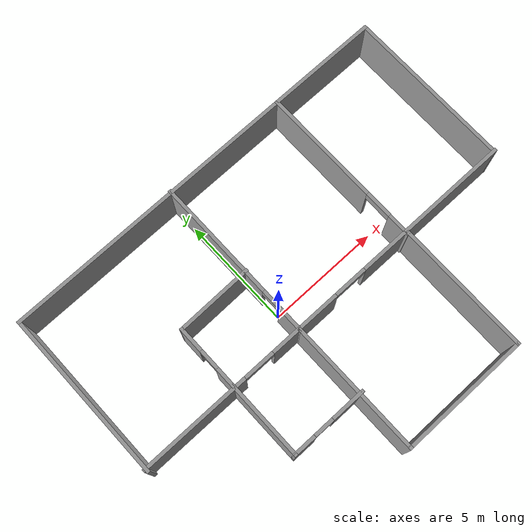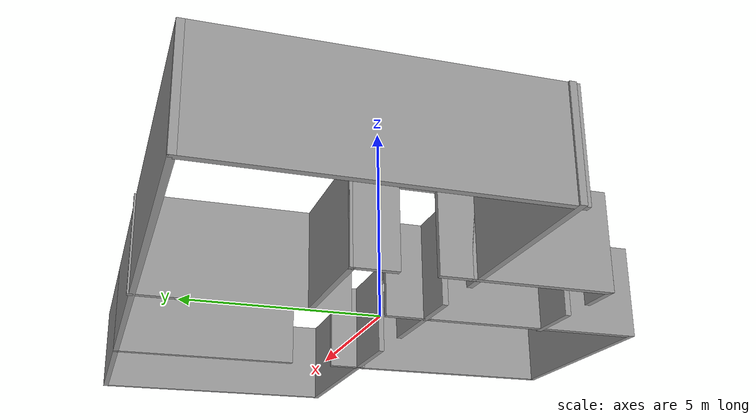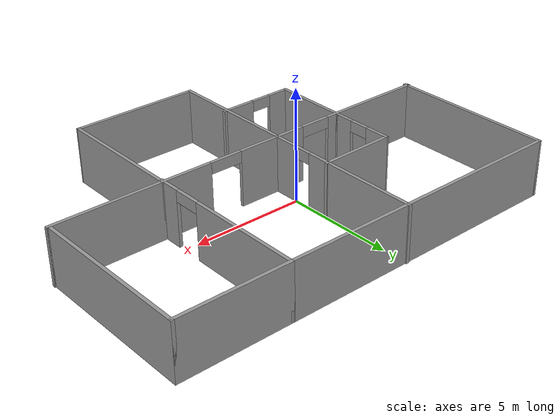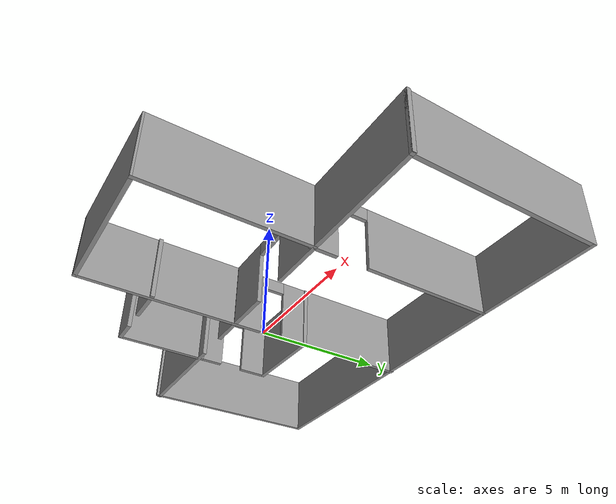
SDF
<?xml version='1.0'?>
<sdf version='1.6'>
  <model name='Floorplan'>
    <pose frame=''>1.40637 -0.495074 0 0 -0 0</pose>
    <link name='Wall_0'>
      <collision name='Wall_0_Collision'>
        <geometry>
          <box>
            <size>13.25 0.15 2.5</size>
          </box>
        </geometry>
        <pose frame=''>0 0 1.25 0 -0 0</pose>
      </collision>
      <visual name='Wall_0_Visual'>
        <pose frame=''>0 0 1.25 0 -0 0</pose>
        <geometry>
          <box>
            <size>13.25 0.15 2.5</size>
          </box>
        </geometry>
        <material>
          <script>
            <uri>file://media/materials/scripts/gazebo.material</uri>
            <name>Gazebo/Grey</name>
          </script>
          <ambient>1 1 1 1</ambient>
        </material>
        <meta>
          <layer>0</layer>
        </meta>
      </visual>
      <pose frame=''>-2.42637 6.55507 0 0 -0 0</pose>
    </link>
    <link name='Wall_14'>
      <pose frame=''>-5.225 -0.693246 0 0 -0 3.14159</pose>
      <visual name='Wall_14_Visual_0'>
        <pose frame=''>-3.17008 0 1.25 0 -0 0</pose>
        <geometry>
          <box>
            <size>1.40985 0.15 2.5</size>
          </box>
        </geometry>
        <material>
          <script>
            <uri>file://media/materials/scripts/gazebo.material</uri>
            <name>Gazebo/Grey</name>
          </script>
          <ambient>1 1 1 1</ambient>
        </material>
        <meta>
          <layer>0</layer>
        </meta>
      </visual>
      <collision name='Wall_14_Collision_0'>
        <geometry>
          <box>
            <size>1.40985 0.15 2.5</size>
          </box>
        </geometry>
        <pose frame=''>-3.17008 0 1.25 0 -0 0</pose>
      </collision>
      <visual name='Wall_14_Visual_1'>
        <pose frame=''>1.40067 0 1.25 0 -0 0</pose>
        <geometry>
          <box>
            <size>4.94866 0.15 2.5</size>
          </box>
        </geometry>
        <material>
          <script>
            <uri>file://media/materials/scripts/gazebo.material</uri>
            <name>Gazebo/Grey</name>
          </script>
          <ambient>1 1 1 1</ambient>
        </material>
        <meta>
          <layer>0</layer>
        </meta>
      </visual>
      <collision name='Wall_14_Collision_1'>
        <geometry>
          <box>
            <size>4.94866 0.15 2.5</size>
          </box>
        </geometry>
        <pose frame=''>1.40067 0 1.25 0 -0 0</pose>
      </collision>
      <visual name='Wall_14_Visual_2'>
        <pose frame=''>-1.76941 0 2.25 0 -0 0</pose>
        <geometry>
          <box>
            <size>1.39149 0.15 0.5</size>
          </box>
        </geometry>
        <material>
          <script>
            <uri>file://media/materials/scripts/gazebo.material</uri>
            <name>Gazebo/Grey</name>
          </script>
          <ambient>1 1 1 1</ambient>
        </material>
        <meta>
          <layer>0</layer>
        </meta>
      </visual>
      <collision name='Wall_14_Collision_2'>
        <geometry>
          <box>
            <size>1.39149 0.15 0.5</size>
          </box>
        </geometry>
        <pose frame=''>-1.76941 0 2.25 0 -0 0</pose>
      </collision>
    </link>
    <link name='Wall_16'>
      <pose frame=''>-1.44249 2.92511 0 0 -0 -1.5708</pose>
      <visual name='Wall_16_Visual_0'>
        <pose frame=''>-1.04655 0 1.25 0 -0 0</pose>
        <geometry>
          <box>
            <size>5.40691 0.15 2.5</size>
          </box>
        </geometry>
        <material>
          <script>
            <uri>file://media/materials/scripts/gazebo.material</uri>
            <name>Gazebo/Grey</name>
          </script>
          <ambient>1 1 1 1</ambient>
        </material>
        <meta>
          <layer>0</layer>
        </meta>
      </visual>
      <collision name='Wall_16_Collision_0'>
        <geometry>
          <box>
            <size>5.40691 0.15 2.5</size>
          </box>
        </geometry>
        <pose frame=''>-1.04655 0 1.25 0 -0 0</pose>
      </collision>
      <visual name='Wall_16_Visual_1'>
        <pose frame=''>3.15346 0 1.25 0 -0 0</pose>
        <geometry>
          <box>
            <size>1.19309 0.15 2.5</size>
          </box>
        </geometry>
        <material>
          <script>
            <uri>file://media/materials/scripts/gazebo.material</uri>
            <name>Gazebo/Grey</name>
          </script>
          <ambient>1 1 1 1</ambient>
        </material>
        <meta>
          <layer>0</layer>
        </meta>
      </visual>
      <collision name='Wall_16_Collision_1'>
        <geometry>
          <box>
            <size>1.19309 0.15 2.5</size>
          </box>
        </geometry>
        <pose frame=''>3.15346 0 1.25 0 -0 0</pose>
      </collision>
      <visual name='Wall_16_Visual_2'>
        <pose frame=''>2.10691 0 2.25 0 -0 0</pose>
        <geometry>
          <box>
            <size>0.9 0.15 0.5</size>
          </box>
        </geometry>
        <material>
          <script>
            <uri>file://media/materials/scripts/gazebo.material</uri>
            <name>Gazebo/Grey</name>
          </script>
          <ambient>1 1 1 1</ambient>
        </material>
        <meta>
          <layer>0</layer>
        </meta>
      </visual>
      <collision name='Wall_16_Collision_2'>
        <geometry>
          <box>
            <size>0.9 0.15 0.5</size>
          </box>
        </geometry>
        <pose frame=''>2.10691 0 2.25 0 -0 0</pose>
      </collision>
    </link>
    <link name='Wall_18'>
      <collision name='Wall_18_Collision'>
        <geometry>
          <box>
            <size>6 0.15 2.5</size>
          </box>
        </geometry>
        <pose frame=''>0 0 1.25 0 -0 0</pose>
      </collision>
      <visual name='Wall_18_Visual'>
        <pose frame=''>0 0 1.25 0 -0 0</pose>
        <geometry>
          <box>
            <size>6 0.15 2.5</size>
          </box>
        </geometry>
        <material>
          <script>
            <uri>file://media/materials/scripts/gazebo.material</uri>
            <name>Gazebo/Grey</name>
          </script>
          <ambient>1 1 1 1</ambient>
        </material>
        <meta>
          <layer>0</layer>
        </meta>
      </visual>
      <pose frame=''>-1.44249 -3.67489 0 0 -0 -1.5708</pose>
    </link>
    <link name='Wall_19'>
      <collision name='Wall_19_Collision'>
        <geometry>
          <box>
            <size>5.75 0.15 2.5</size>
          </box>
        </geometry>
        <pose frame=''>0 0 1.25 0 -0 0</pose>
      </collision>
      <visual name='Wall_19_Visual'>
        <pose frame=''>0 0 1.25 0 -0 0</pose>
        <geometry>
          <box>
            <size>5.75 0.15 2.5</size>
          </box>
        </geometry>
        <material>
          <script>
            <uri>file://media/materials/scripts/gazebo.material</uri>
            <name>Gazebo/Grey</name>
          </script>
          <ambient>1 1 1 1</ambient>
        </material>
        <meta>
          <layer>0</layer>
        </meta>
      </visual>
      <pose frame=''>1.35751 -6.59989 0 0 -0 0</pose>
    </link>
    <link name='Wall_20'>
      <collision name='Wall_20_Collision'>
        <geometry>
          <box>
            <size>6.05667 0.15 2.5</size>
          </box>
        </geometry>
        <pose frame=''>0 0 1.25 0 -0 0</pose>
      </collision>
      <visual name='Wall_20_Visual'>
        <pose frame=''>0 0 1.25 0 -0 0</pose>
        <geometry>
          <box>
            <size>6.05667 0.15 2.5</size>
          </box>
        </geometry>
        <material>
          <script>
            <uri>file://media/materials/scripts/gazebo.material</uri>
            <name>Gazebo/Grey</name>
          </script>
          <ambient>1 1 1 1</ambient>
        </material>
        <meta>
          <layer>0</layer>
        </meta>
      </visual>
      <pose frame=''>4.16625 -3.64657 0 0 -0 1.56784</pose>
    </link>
    <link name='Wall_22'>
      <collision name='Wall_22_Collision'>
        <geometry>
          <box>
            <size>3.5 0.15 2.5</size>
          </box>
        </geometry>
        <pose frame=''>0 0 1.25 0 -0 0</pose>
      </collision>
      <visual name='Wall_22_Visual'>
        <pose frame=''>0 0 1.25 0 -0 0</pose>
        <geometry>
          <box>
            <size>3.5 0.15 2.5</size>
          </box>
        </geometry>
        <material>
          <script>
            <uri>file://media/materials/scripts/gazebo.material</uri>
            <name>Gazebo/Grey</name>
          </script>
          <ambient>1 1 1 1</ambient>
        </material>
        <meta>
          <layer>0</layer>
        </meta>
      </visual>
      <pose frame=''>-4.67815 -2.28079 0 0 -0 -1.5708</pose>
    </link>
    <link name='Wall_23'>
      <pose frame=''>-3.00315 -3.9558 0 0 -0 0</pose>
      <visual name='Wall_23_Visual_0'>
        <pose frame=''>-1.22494 0 1.25 0 -0 0</pose>
        <geometry>
          <box>
            <size>1.05013 0.15 2.5</size>
          </box>
        </geometry>
        <material>
          <script>
            <uri>file://media/materials/scripts/gazebo.material</uri>
            <name>Gazebo/Grey</name>
          </script>
          <ambient>1 1 1 1</ambient>
        </material>
        <meta>
          <layer>0</layer>
        </meta>
      </visual>
      <collision name='Wall_23_Collision_0'>
        <geometry>
          <box>
            <size>1.05013 0.15 2.5</size>
          </box>
        </geometry>
        <pose frame=''>-1.22494 0 1.25 0 -0 0</pose>
      </collision>
      <visual name='Wall_23_Visual_1'>
        <pose frame=''>0.975064 0 1.25 0 -0 0</pose>
        <geometry>
          <box>
            <size>1.54987 0.15 2.5</size>
          </box>
        </geometry>
        <material>
          <script>
            <uri>file://media/materials/scripts/gazebo.material</uri>
            <name>Gazebo/Grey</name>
          </script>
          <ambient>1 1 1 1</ambient>
        </material>
        <meta>
          <layer>0</layer>
        </meta>
      </visual>
      <collision name='Wall_23_Collision_1'>
        <geometry>
          <box>
            <size>1.54987 0.15 2.5</size>
          </box>
        </geometry>
        <pose frame=''>0.975064 0 1.25 0 -0 0</pose>
      </collision>
      <visual name='Wall_23_Visual_2'>
        <pose frame=''>-0.249871 0 2.25 0 -0 0</pose>
        <geometry>
          <box>
            <size>0.9 0.15 0.5</size>
          </box>
        </geometry>
        <material>
          <script>
            <uri>file://media/materials/scripts/gazebo.material</uri>
            <name>Gazebo/Grey</name>
          </script>
          <ambient>1 1 1 1</ambient>
        </material>
        <meta>
          <layer>0</layer>
        </meta>
      </visual>
      <collision name='Wall_23_Collision_2'>
        <geometry>
          <box>
            <size>0.9 0.15 0.5</size>
          </box>
        </geometry>
        <pose frame=''>-0.249871 0 2.25 0 -0 0</pose>
      </collision>
    </link>
    <link name='Wall_25'>
      <pose frame=''>-4.67815 0.819205 0 0 -0 1.5708</pose>
      <visual name='Wall_25_Visual_0'>
        <pose frame=''>-1.02843 0 1.25 0 -0 0</pose>
        <geometry>
          <box>
            <size>0.943137 0.15 2.5</size>
          </box>
        </geometry>
        <material>
          <script>
            <uri>file://media/materials/scripts/gazebo.material</uri>
            <name>Gazebo/Grey</name>
          </script>
          <ambient>1 1 1 1</ambient>
        </material>
        <meta>
          <layer>0</layer>
        </meta>
      </visual>
      <collision name='Wall_25_Collision_0'>
        <geometry>
          <box>
            <size>0.943137 0.15 2.5</size>
          </box>
        </geometry>
        <pose frame=''>-1.02843 0 1.25 0 -0 0</pose>
      </collision>
      <visual name='Wall_25_Visual_1'>
        <pose frame=''>0.921568 0 1.25 0 -0 0</pose>
        <geometry>
          <box>
            <size>1.15686 0.15 2.5</size>
          </box>
        </geometry>
        <material>
          <script>
            <uri>file://media/materials/scripts/gazebo.material</uri>
            <name>Gazebo/Grey</name>
          </script>
          <ambient>1 1 1 1</ambient>
        </material>
        <meta>
          <layer>0</layer>
        </meta>
      </visual>
      <collision name='Wall_25_Collision_1'>
        <geometry>
          <box>
            <size>1.15686 0.15 2.5</size>
          </box>
        </geometry>
        <pose frame=''>0.921568 0 1.25 0 -0 0</pose>
      </collision>
      <visual name='Wall_25_Visual_2'>
        <pose frame=''>-0.106863 0 2.25 0 -0 0</pose>
        <geometry>
          <box>
            <size>0.9 0.15 0.5</size>
          </box>
        </geometry>
        <material>
          <script>
            <uri>file://media/materials/scripts/gazebo.material</uri>
            <name>Gazebo/Grey</name>
          </script>
          <ambient>1 1 1 1</ambient>
        </material>
        <meta>
          <layer>0</layer>
        </meta>
      </visual>
      <collision name='Wall_25_Collision_2'>
        <geometry>
          <box>
            <size>0.9 0.15 0.5</size>
          </box>
        </geometry>
        <pose frame=''>-0.106863 0 2.25 0 -0 0</pose>
      </collision>
    </link>
    <link name='Wall_29'>
      <collision name='Wall_29_Collision'>
        <geometry>
          <box>
            <size>3.42108 0.15 2.5</size>
          </box>
        </geometry>
        <pose frame=''>0 0 1.25 0 -0 0</pose>
      </collision>
      <visual name='Wall_29_Visual'>
        <pose frame=''>0 0 1.25 0 -0 0</pose>
        <geometry>
          <box>
            <size>3.42108 0.15 2.5</size>
          </box>
        </geometry>
        <material>
          <script>
            <uri>file://media/materials/scripts/gazebo.material</uri>
            <name>Gazebo/Grey</name>
          </script>
          <ambient>1 1 1 1</ambient>
        </material>
        <meta>
          <layer>0</layer>
        </meta>
      </visual>
      <pose frame=''>-3.04283 2.27088 0 0 -0 -3.12528</pose>
    </link>
    <link name='Wall_3'>
      <pose frame=''>4.12364 2.88007 0 0 -0 -1.5708</pose>
      <visual name='Wall_3_Visual_0'>
        <pose frame=''>-1.12925 0 1.25 0 -0 0</pose>
        <geometry>
          <box>
            <size>5.2415 0.15 2.5</size>
          </box>
        </geometry>
        <material>
          <script>
            <uri>file://media/materials/scripts/gazebo.material</uri>
            <name>Gazebo/Grey</name>
          </script>
          <ambient>1 1 1 1</ambient>
        </material>
        <meta>
          <layer>0</layer>
        </meta>
      </visual>
      <collision name='Wall_3_Collision_0'>
        <geometry>
          <box>
            <size>5.2415 0.15 2.5</size>
          </box>
        </geometry>
        <pose frame=''>-1.12925 0 1.25 0 -0 0</pose>
      </collision>
      <visual name='Wall_3_Visual_1'>
        <pose frame=''>3.22253 0 1.25 0 -0 0</pose>
        <geometry>
          <box>
            <size>1.05495 0.15 2.5</size>
          </box>
        </geometry>
        <material>
          <script>
            <uri>file://media/materials/scripts/gazebo.material</uri>
            <name>Gazebo/Grey</name>
          </script>
          <ambient>1 1 1 1</ambient>
        </material>
        <meta>
          <layer>0</layer>
        </meta>
      </visual>
      <collision name='Wall_3_Collision_1'>
        <geometry>
          <box>
            <size>1.05495 0.15 2.5</size>
          </box>
        </geometry>
        <pose frame=''>3.22253 0 1.25 0 -0 0</pose>
      </collision>
      <visual name='Wall_3_Visual_2'>
        <pose frame=''>2.09328 0 2.25 0 -0 0</pose>
        <geometry>
          <box>
            <size>1.20355 0.15 0.5</size>
          </box>
        </geometry>
        <material>
          <script>
            <uri>file://media/materials/scripts/gazebo.material</uri>
            <name>Gazebo/Grey</name>
          </script>
          <ambient>1 1 1 1</ambient>
        </material>
        <meta>
          <layer>0</layer>
        </meta>
      </visual>
      <collision name='Wall_3_Collision_2'>
        <geometry>
          <box>
            <size>1.20355 0.15 0.5</size>
          </box>
        </geometry>
        <pose frame=''>2.09328 0 2.25 0 -0 0</pose>
      </collision>
    </link>
    <link name='Wall_31'>
      <collision name='Wall_31_Collision'>
        <geometry>
          <box>
            <size>5 0.15 2.5</size>
          </box>
        </geometry>
        <pose frame=''>0 0 1.25 0 -0 0</pose>
      </collision>
      <visual name='Wall_31_Visual'>
        <pose frame=''>0 0 1.25 0 -0 0</pose>
        <geometry>
          <box>
            <size>5 0.15 2.5</size>
          </box>
        </geometry>
        <material>
          <script>
            <uri>file://media/materials/scripts/gazebo.material</uri>
            <name>Gazebo/Grey</name>
          </script>
          <ambient>1 1 1 1</ambient>
        </material>
        <meta>
          <layer>0</layer>
        </meta>
      </visual>
      <pose frame=''>6.54863 6.55507 0 0 -0 0</pose>
    </link>
    <link name='Wall_32'>
      <collision name='Wall_32_Collision'>
        <geometry>
          <box>
            <size>7.25 0.15 2.5</size>
          </box>
        </geometry>
        <pose frame=''>0 0 1.25 0 -0 0</pose>
      </collision>
      <visual name='Wall_32_Visual'>
        <pose frame=''>0 0 1.25 0 -0 0</pose>
        <geometry>
          <box>
            <size>7.25 0.15 2.5</size>
          </box>
        </geometry>
        <material>
          <script>
            <uri>file://media/materials/scripts/gazebo.material</uri>
            <name>Gazebo/Grey</name>
          </script>
          <ambient>1 1 1 1</ambient>
        </material>
        <meta>
          <layer>0</layer>
        </meta>
      </visual>
      <pose frame=''>8.97363 3.00507 0 0 -0 -1.5708</pose>
    </link>
    <link name='Wall_34'>
      <collision name='Wall_34_Collision'>
        <geometry>
          <box>
            <size>5 0.15 2.5</size>
          </box>
        </geometry>
        <pose frame=''>0 0 1.25 0 -0 0</pose>
      </collision>
      <visual name='Wall_34_Visual'>
        <pose frame=''>0 0 1.25 0 -0 0</pose>
        <geometry>
          <box>
            <size>5 0.15 2.5</size>
          </box>
        </geometry>
        <material>
          <script>
            <uri>file://media/materials/scripts/gazebo.material</uri>
            <name>Gazebo/Grey</name>
          </script>
          <ambient>1 1 1 1</ambient>
        </material>
        <meta>
          <layer>0</layer>
        </meta>
      </visual>
      <pose frame=''>6.6 -0.693246 0 0 -0 0</pose>
    </link>
    <link name='Wall_35'>
      <collision name='Wall_35_Collision'>
        <geometry>
          <box>
            <size>0.15 0.15 2.5</size>
          </box>
        </geometry>
        <pose frame=''>0 0 1.25 0 -0 0</pose>
      </collision>
      <visual name='Wall_35_Visual'>
        <pose frame=''>0 0 1.25 0 -0 0</pose>
        <geometry>
          <box>
            <size>0.15 0.15 2.5</size>
          </box>
        </geometry>
        <material>
          <script>
            <uri>file://media/materials/scripts/gazebo.material</uri>
            <name>Gazebo/Grey</name>
          </script>
          <ambient>1 1 1 1</ambient>
        </material>
        <meta>
          <layer>0</layer>
        </meta>
      </visual>
      <pose frame=''>9.025 -0.693246 0 0 -0 0</pose>
    </link>
    <link name='Wall_6'>
      <pose frame=''>1.375 -0.693246 0 0 -0 0</pose>
      <visual name='Wall_6_Visual_0'>
        <pose frame=''>-1.88941 0 1.25 0 -0 0</pose>
        <geometry>
          <box>
            <size>1.97119 0.15 2.5</size>
          </box>
        </geometry>
        <material>
          <script>
            <uri>file://media/materials/scripts/gazebo.material</uri>
            <name>Gazebo/Grey</name>
          </script>
          <ambient>1 1 1 1</ambient>
        </material>
        <meta>
          <layer>0</layer>
        </meta>
      </visual>
      <collision name='Wall_6_Collision_0'>
        <geometry>
          <box>
            <size>1.97119 0.15 2.5</size>
          </box>
        </geometry>
        <pose frame=''>-1.88941 0 1.25 0 -0 0</pose>
      </collision>
      <visual name='Wall_6_Visual_1'>
        <pose frame=''>1.71948 0 1.25 0 -0 0</pose>
        <geometry>
          <box>
            <size>2.31103 0.15 2.5</size>
          </box>
        </geometry>
        <material>
          <script>
            <uri>file://media/materials/scripts/gazebo.material</uri>
            <name>Gazebo/Grey</name>
          </script>
          <ambient>1 1 1 1</ambient>
        </material>
        <meta>
          <layer>0</layer>
        </meta>
      </visual>
      <collision name='Wall_6_Collision_1'>
        <geometry>
          <box>
            <size>2.31103 0.15 2.5</size>
          </box>
        </geometry>
        <pose frame=''>1.71948 0 1.25 0 -0 0</pose>
      </collision>
      <visual name='Wall_6_Visual_2'>
        <pose frame=''>-0.169923 0 2.25 0 -0 0</pose>
        <geometry>
          <box>
            <size>1.46778 0.15 0.5</size>
          </box>
        </geometry>
        <material>
          <script>
            <uri>file://media/materials/scripts/gazebo.material</uri>
            <name>Gazebo/Grey</name>
          </script>
          <ambient>1 1 1 1</ambient>
        </material>
        <meta>
          <layer>0</layer>
        </meta>
      </visual>
      <collision name='Wall_6_Collision_2'>
        <geometry>
          <box>
            <size>1.46778 0.15 0.5</size>
          </box>
        </geometry>
        <pose frame=''>-0.169923 0 2.25 0 -0 0</pose>
      </collision>
    </link>
    <link name='Wall_8'>
      <collision name='Wall_8_Collision'>
        <geometry>
          <box>
            <size>7.5 0.15 2.5</size>
          </box>
        </geometry>
        <pose frame=''>0 0 1.25 0 -0 0</pose>
      </collision>
      <visual name='Wall_8_Visual'>
        <pose frame=''>0 0 1.25 0 -0 0</pose>
        <geometry>
          <box>
            <size>7.5 0.15 2.5</size>
          </box>
        </geometry>
        <material>
          <script>
            <uri>file://media/materials/scripts/gazebo.material</uri>
            <name>Gazebo/Grey</name>
          </script>
          <ambient>1 1 1 1</ambient>
        </material>
        <meta>
          <layer>0</layer>
        </meta>
      </visual>
      <pose frame=''>-8.97636 2.88007 0 0 -0 -1.5708</pose>
    </link>
    <static>1</static>
  </model>
</sdf>
